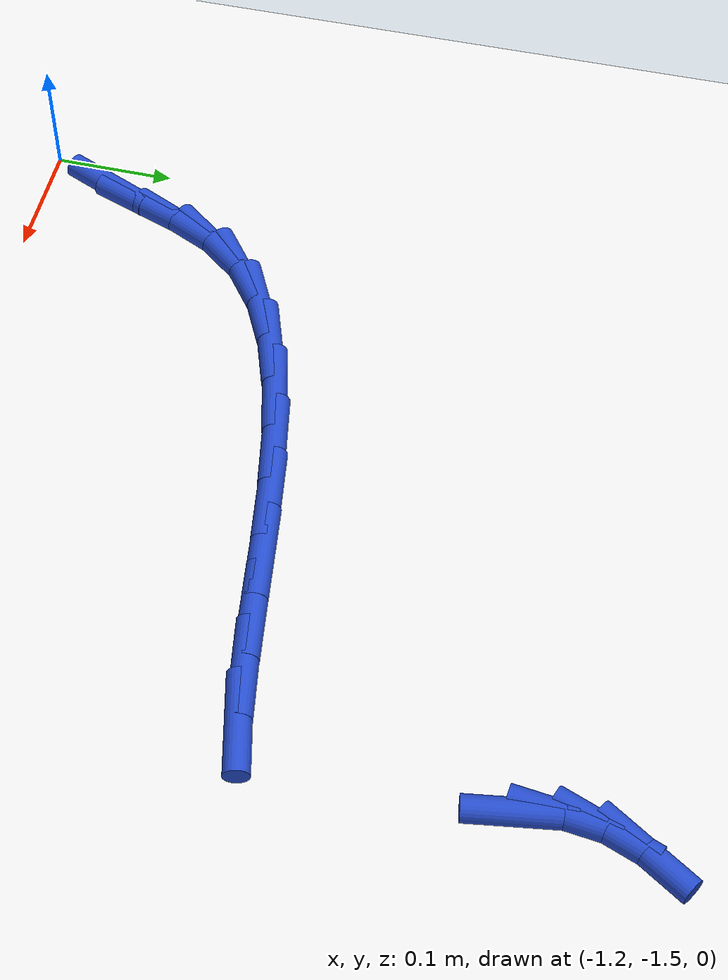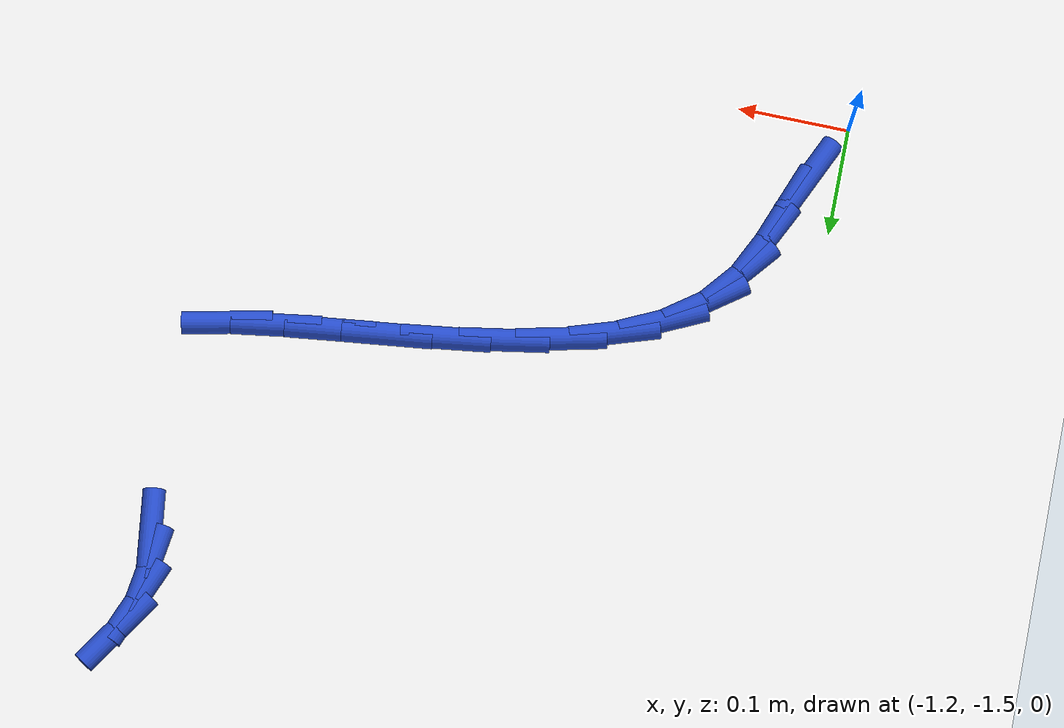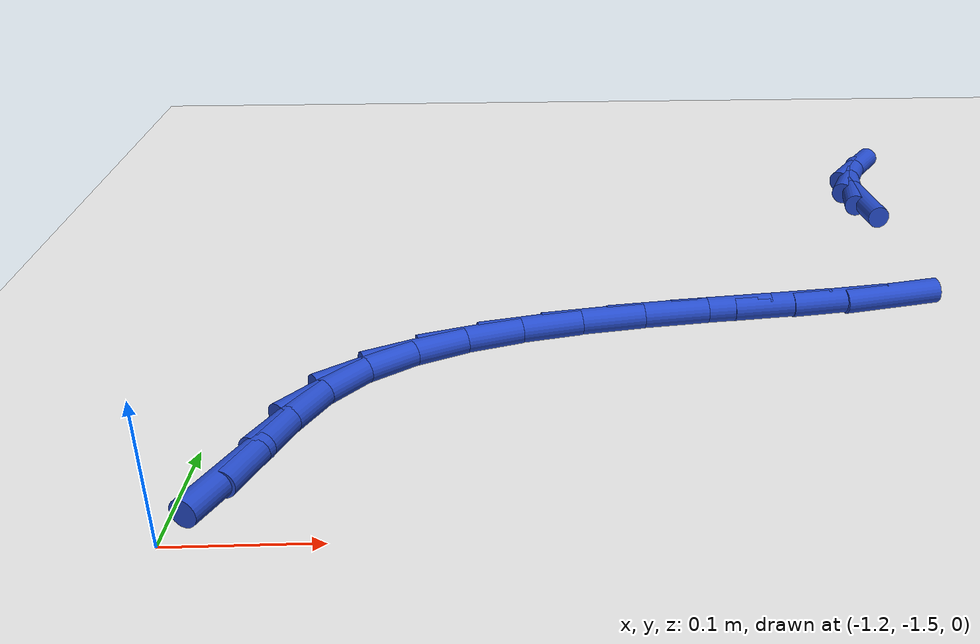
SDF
<sdf version="1.6">
 <world name="default">
  <model name="ground_plane">
   <static>1</static>
   <link name="link">
    <collision name="collision">
     <geometry><plane><normal>0 0 1</normal><size>100 100</size></plane></geometry>
     <surface><friction><ode><mu>100</mu><mu2>50</mu2></ode></friction></surface>
    </collision>
    <visual name="visual">
     <cast_shadows>0</cast_shadows>
     <geometry><plane><normal>0 0 1</normal><size>100 100</size></plane></geometry>
     <material>
      <script><uri>file://media/materials/scripts/gazebo.material</uri><name>Gazebo/WhiteGlow</name></script>
     </material>
    </visual>
   </link>
  </model>
  <model name="line">
   <link name="link_165">
    <pose>-1.1721500398948774 -1.444844208204545 0.01 0 1.57 1.1563589137791563</pose>
    <collision name="collision">
     <geometry><cylinder><radius>0.01</radius><length>0.08</length></cylinder></geometry>
    </collision>
    <visual name="visual">
     <material>
      <script><name>Gazebo/Blue</name><uri>file://media/materials/scripts/gazebo.material</uri></script>
     </material>
     <geometry><cylinder><radius>0.01</radius><length>0.08</length></cylinder></geometry>
    </visual>
   </link>
   <link name="link_166">
    <pose>-1.1586881715410595 -1.4142432868906134 0.01 0 1.57 1.2211591987084232</pose>
    <collision name="collision">
     <geometry><cylinder><radius>0.01</radius><length>0.08</length></cylinder></geometry>
    </collision>
    <visual name="visual">
     <material>
      <script><name>Gazebo/Blue</name><uri>file://media/materials/scripts/gazebo.material</uri></script>
     </material>
     <geometry><cylinder><radius>0.01</radius><length>0.08</length></cylinder></geometry>
    </visual>
   </link>
   <link name="link_167">
    <pose>-1.145689706281384 -1.3785936774903842 0.01 0 1.57 1.1301776041567468</pose>
    <collision name="collision">
     <geometry><cylinder><radius>0.01</radius><length>0.08</length></cylinder></geometry>
    </collision>
    <visual name="visual">
     <material>
      <script><name>Gazebo/Blue</name><uri>file://media/materials/scripts/gazebo.material</uri></script>
     </material>
     <geometry><cylinder><radius>0.01</radius><length>0.08</length></cylinder></geometry>
    </visual>
   </link>
   <link name="link_168">
    <pose>-1.1288816170532345 -1.342948323102806 0.01 0 1.57 0.898404499661496</pose>
    <collision name="collision">
     <geometry><cylinder><radius>0.01</radius><length>0.08</length></cylinder></geometry>
    </collision>
    <visual name="visual">
     <material>
      <script><name>Gazebo/Blue</name><uri>file://media/materials/scripts/gazebo.material</uri></script>
     </material>
     <geometry><cylinder><radius>0.01</radius><length>0.08</length></cylinder></geometry>
    </visual>
   </link>
   <link name="link_169">
    <pose>-1.1042902779613546 -1.312060682801699 0.01 0 1.57 0.6456353633904162</pose>
    <collision name="collision">
     <geometry><cylinder><radius>0.01</radius><length>0.08</length></cylinder></geometry>
    </collision>
    <visual name="visual">
     <material>
      <script><name>Gazebo/Blue</name><uri>file://media/materials/scripts/gazebo.material</uri></script>
     </material>
     <geometry><cylinder><radius>0.01</radius><length>0.08</length></cylinder></geometry>
    </visual>
   </link>
   <link name="link_170">
    <pose>-1.0713514681185605 -1.2872465556975898 0.01 0 1.57 0.45754515419696706</pose>
    <collision name="collision">
     <geometry><cylinder><radius>0.01</radius><length>0.08</length></cylinder></geometry>
    </collision>
    <visual name="visual">
     <material>
      <script><name>Gazebo/Blue</name><uri>file://media/materials/scripts/gazebo.material</uri></script>
     </material>
     <geometry><cylinder><radius>0.01</radius><length>0.08</length></cylinder></geometry>
    </visual>
   </link>
   <link name="link_171">
    <pose>-1.0316214450432426 -1.2676836893346437 0.01 0 1.57 0.3255193465635363</pose>
    <collision name="collision">
     <geometry><cylinder><radius>0.01</radius><length>0.08</length></cylinder></geometry>
    </collision>
    <visual name="visual">
     <material>
      <script><name>Gazebo/Blue</name><uri>file://media/materials/scripts/gazebo.material</uri></script>
     </material>
     <geometry><cylinder><radius>0.01</radius><length>0.08</length></cylinder></geometry>
    </visual>
   </link>
   <link name="link_172">
    <pose>-0.9866884163546782 -1.252517616374257 0.01 0 1.57 0.23500480072245297</pose>
    <collision name="collision">
     <geometry><cylinder><radius>0.01</radius><length>0.08</length></cylinder></geometry>
    </collision>
    <visual name="visual">
     <material>
      <script><name>Gazebo/Blue</name><uri>file://media/materials/scripts/gazebo.material</uri></script>
     </material>
     <geometry><cylinder><radius>0.01</radius><length>0.08</length></cylinder></geometry>
    </visual>
   </link>
   <link name="link_173">
    <pose>-0.9381405896721439 -1.2408938694778255 0.01 0 1.57 0.1748829518573041</pose>
    <collision name="collision">
     <geometry><cylinder><radius>0.01</radius><length>0.08</length></cylinder></geometry>
    </collision>
    <visual name="visual">
     <material>
      <script><name>Gazebo/Blue</name><uri>file://media/materials/scripts/gazebo.material</uri></script>
     </material>
     <geometry><cylinder><radius>0.01</radius><length>0.08</length></cylinder></geometry>
    </visual>
   </link>
   <link name="link_174">
    <pose>-0.8875661726149204 -1.2319579813067463 0.01 0 1.57 0.13834036878790443</pose>
    <collision name="collision">
     <geometry><cylinder><radius>0.01</radius><length>0.08</length></cylinder></geometry>
    </collision>
    <visual name="visual">
     <material>
      <script><name>Gazebo/Blue</name><uri>file://media/materials/scripts/gazebo.material</uri></script>
     </material>
     <geometry><cylinder><radius>0.01</radius><length>0.08</length></cylinder></geometry>
    </visual>
   </link>
   <link name="link_175">
    <pose>-0.8365533728022841 -1.2248554845224147 0.01 0 1.57 0.12219614860051034</pose>
    <collision name="collision">
     <geometry><cylinder><radius>0.01</radius><length>0.08</length></cylinder></geometry>
    </collision>
    <visual name="visual">
     <material>
      <script><name>Gazebo/Blue</name><uri>file://media/materials/scripts/gazebo.material</uri></script>
     </material>
     <geometry><cylinder><radius>0.01</radius><length>0.08</length></cylinder></geometry>
    </visual>
   </link>
   <link name="link_176">
    <pose>-0.7866903978535131 -1.2187319117862272 0.01 0 1.57 0.1266212799462115</pose>
    <collision name="collision">
     <geometry><cylinder><radius>0.01</radius><length>0.08</length></cylinder></geometry>
    </collision>
    <visual name="visual">
     <material>
      <script><name>Gazebo/Blue</name><uri>file://media/materials/scripts/gazebo.material</uri></script>
     </material>
     <geometry><cylinder><radius>0.01</radius><length>0.08</length></cylinder></geometry>
    </visual>
   </link>
   <link name="link_177">
    <pose>-0.7395654553878858 -1.2127327957595806 0.01 0 1.57 0.15595065928507565</pose>
    <collision name="collision">
     <geometry><cylinder><radius>0.01</radius><length>0.08</length></cylinder></geometry>
    </collision>
    <visual name="visual">
     <material>
      <script><name>Gazebo/Blue</name><uri>file://media/materials/scripts/gazebo.material</uri></script>
     </material>
     <geometry><cylinder><radius>0.01</radius><length>0.08</length></cylinder></geometry>
    </visual>
   </link>
   <link name="link_178">
    <pose>-0.6967667530246785 -1.20600366910387 0.01 0 1.57 0.22169239094807208</pose>
    <collision name="collision">
     <geometry><cylinder><radius>0.01</radius><length>0.08</length></cylinder></geometry>
    </collision>
    <visual name="visual">
     <material>
      <script><name>Gazebo/Blue</name><uri>file://media/materials/scripts/gazebo.material</uri></script>
     </material>
     <geometry><cylinder><radius>0.01</radius><length>0.08</length></cylinder></geometry>
    </visual>
   </link>
   <link name="link_187">
    <pose>-0.6756883065937392 -1.0054192049345136 0.01 0 1.57 -1.4173750177717275</pose>
    <collision name="collision">
     <geometry><cylinder><radius>0.01</radius><length>0.08</length></cylinder></geometry>
    </collision>
    <visual name="visual">
     <material>
      <script><name>Gazebo/Blue</name><uri>file://media/materials/scripts/gazebo.material</uri></script>
     </material>
     <geometry><cylinder><radius>0.01</radius><length>0.08</length></cylinder></geometry>
    </visual>
   </link>
   <link name="link_188">
    <pose>-0.680372884121174 -0.9751250795468054 0.01 0 1.57 1.4608931486574557</pose>
    <collision name="collision">
     <geometry><cylinder><radius>0.01</radius><length>0.08</length></cylinder></geometry>
    </collision>
    <visual name="visual">
     <material>
      <script><name>Gazebo/Blue</name><uri>file://media/materials/scripts/gazebo.material</uri></script>
     </material>
     <geometry><cylinder><radius>0.01</radius><length>0.08</length></cylinder></geometry>
    </visual>
   </link>
   <link name="link_189">
    <pose>-0.6771871520969512 -0.9462551667014668 0.01 0 1.57 1.213129427258532</pose>
    <collision name="collision">
     <geometry><cylinder><radius>0.01</radius><length>0.08</length></cylinder></geometry>
    </collision>
    <visual name="visual">
     <material>
      <script><name>Gazebo/Blue</name><uri>file://media/materials/scripts/gazebo.material</uri></script>
     </material>
     <geometry><cylinder><radius>0.01</radius><length>0.08</length></cylinder></geometry>
    </visual>
   </link>
   <link name="link_190">
    <pose>-0.6668642978917886 -0.918634864101212 0.01 0 1.57 1.0085218508003053</pose>
    <collision name="collision">
     <geometry><cylinder><radius>0.01</radius><length>0.08</length></cylinder></geometry>
    </collision>
    <visual name="visual">
     <material>
      <script><name>Gazebo/Blue</name><uri>file://media/materials/scripts/gazebo.material</uri></script>
     </material>
     <geometry><cylinder><radius>0.01</radius><length>0.08</length></cylinder></geometry>
    </visual>
   </link>
  </model>
 </world>
</sdf>
